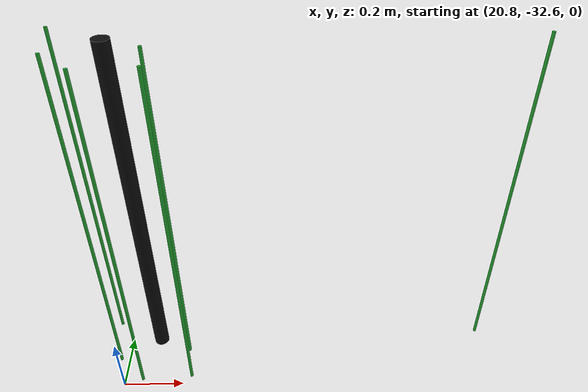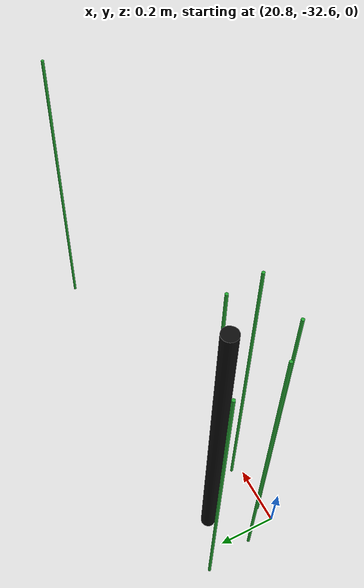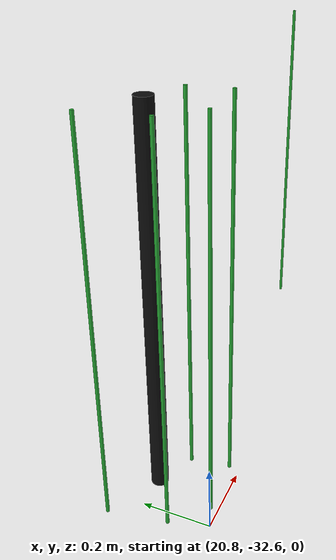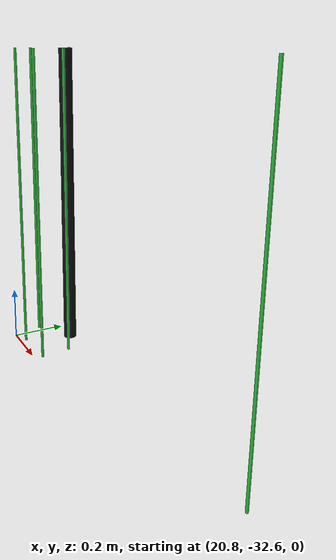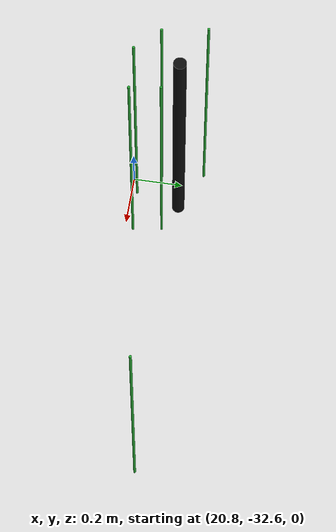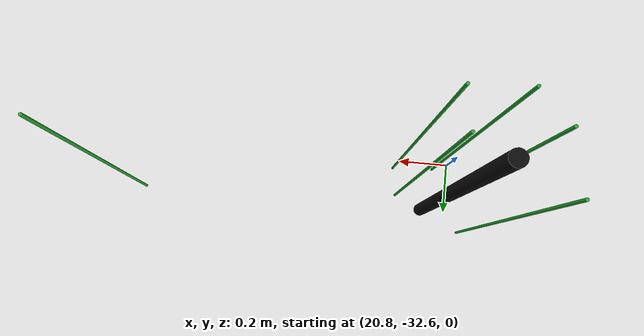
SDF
<sdf version="1.6">
 <world name="default">
  <model name="pole_25">
   <static>1</static>
   <pose>20.9 -32.4 0.575 0 -0 0</pose>
   <link name="link">
    <collision name="collision">
     <geometry><cylinder><length>1.15</length><radius>0.025</radius></cylinder></geometry>
    </collision>
    <visual name="visual">
     <geometry><cylinder><length>1.15</length><radius>0.025</radius></cylinder></geometry>
     <material>
      <script><uri>file://media/materials/scripts/gazebo.material</uri><name>Gazebo/Chrome</name></script>
      <shader type="vertex"><normal_map>__default__</normal_map></shader>
      <emissive>0.1 0.1 0.1 1</emissive>
      <specular>0.01 0.01 0.01 1</specular>
      <ambient>0.5 0.5 0.5 1</ambient>
      <diffuse>0.05 0.05 0.05 1</diffuse>
     </material>
    </visual>
   </link>
  </model>
  <model name="pole_27_clone_clone_68">
   <link name="link">
    <inertial>
     <mass>1</mass>
     <inertia><ixx>1</ixx><ixy>0</ixy><ixz>0</ixz><iyy>1</iyy><iyz>0</iyz><izz>1</izz></inertia>
    </inertial>
    <visual name="visual">
     <geometry><cylinder><length>1.15</length><radius>0.005</radius></cylinder></geometry>
     <material>
      <script><uri>file://media/materials/scripts/gazebo.material</uri><name>Gazebo/Green</name></script>
      <shader type="vertex"><normal_map>__default__</normal_map></shader>
      <emissive>0 0.1 0 1</emissive>
      <specular>0 0.01 0 1</specular>
      <ambient>0 0.5 0 1</ambient>
      <diffuse>0 0.05 0 1</diffuse>
     </material>
    </visual>
    <collision name="collision">
     <geometry><cylinder><radius>0.005</radius><length>1.15</length></cylinder></geometry>
     <surface>
      <friction>
       <ode><mu>1</mu><mu2>1</mu2><fdir1>0 0 0</fdir1><slip1>0</slip1><slip2>0</slip2></ode>
       <torsional>
        <coefficient>1</coefficient>
        <patch_radius>0</patch_radius>
        <surface_radius>0</surface_radius>
        <use_patch_radius>1</use_patch_radius>
        <ode><slip>0</slip></ode>
       </torsional>
      </friction>
      <bounce><restitution_coefficient>0</restitution_coefficient><threshold>1e+06</threshold></bounce>
      <contact>
       <collide_without_contact>0</collide_without_contact>
       <collide_without_contact_bitmask>1</collide_without_contact_bitmask>
       <collide_bitmask>1</collide_bitmask>
       <ode>
        <soft_cfm>0</soft_cfm>
        <soft_erp>0.2</soft_erp>
        <kp>1e+13</kp>
        <kd>1</kd>
        <max_vel>0.01</max_vel>
        <min_depth>0</min_depth>
       </ode>
       <bullet>
        <split_impulse>1</split_impulse>
        <split_impulse_penetration_threshold>-0.01</split_impulse_penetration_threshold>
        <soft_cfm>0</soft_cfm>
        <soft_erp>0.2</soft_erp>
        <kp>1e+13</kp>
        <kd>1</kd>
       </bullet>
      </contact>
     </surface>
    </collision>
   </link>
   <static>1</static>
   <pose>20.7397 -32.318 0.575 0 -0 0</pose>
  </model>
  <model name="pole_27_clone_clone_69">
   <link name="link">
    <inertial>
     <mass>1</mass>
     <inertia><ixx>1</ixx><ixy>0</ixy><ixz>0</ixz><iyy>1</iyy><iyz>0</iyz><izz>1</izz></inertia>
    </inertial>
    <visual name="visual">
     <geometry><cylinder><length>1.15</length><radius>0.005</radius></cylinder></geometry>
     <material>
      <script><uri>file://media/materials/scripts/gazebo.material</uri><name>Gazebo/Green</name></script>
      <shader type="vertex"><normal_map>__default__</normal_map></shader>
      <emissive>0 0.1 0 1</emissive>
      <specular>0 0.01 0 1</specular>
      <ambient>0 0.5 0 1</ambient>
      <diffuse>0 0.05 0 1</diffuse>
     </material>
    </visual>
    <collision name="collision">
     <geometry><cylinder><radius>0.005</radius><length>1.15</length></cylinder></geometry>
     <surface>
      <friction>
       <ode><mu>1</mu><mu2>1</mu2><fdir1>0 0 0</fdir1><slip1>0</slip1><slip2>0</slip2></ode>
       <torsional>
        <coefficient>1</coefficient>
        <patch_radius>0</patch_radius>
        <surface_radius>0</surface_radius>
        <use_patch_radius>1</use_patch_radius>
        <ode><slip>0</slip></ode>
       </torsional>
      </friction>
      <bounce><restitution_coefficient>0</restitution_coefficient><threshold>1e+06</threshold></bounce>
      <contact>
       <collide_without_contact>0</collide_without_contact>
       <collide_without_contact_bitmask>1</collide_without_contact_bitmask>
       <collide_bitmask>1</collide_bitmask>
       <ode>
        <soft_cfm>0</soft_cfm>
        <soft_erp>0.2</soft_erp>
        <kp>1e+13</kp>
        <kd>1</kd>
        <max_vel>0.01</max_vel>
        <min_depth>0</min_depth>
       </ode>
       <bullet>
        <split_impulse>1</split_impulse>
        <split_impulse_penetration_threshold>-0.01</split_impulse_penetration_threshold>
        <soft_cfm>0</soft_cfm>
        <soft_erp>0.2</soft_erp>
        <kp>1e+13</kp>
        <kd>1</kd>
       </bullet>
      </contact>
     </surface>
    </collision>
   </link>
   <static>1</static>
   <pose>21.0087 -32.4518 0.575 0 -0 0</pose>
  </model>
  <model name="pole_27_clone_clone_70">
   <link name="link">
    <inertial>
     <mass>1</mass>
     <inertia><ixx>1</ixx><ixy>0</ixy><ixz>0</ixz><iyy>1</iyy><iyz>0</iyz><izz>1</izz></inertia>
    </inertial>
    <visual name="visual">
     <geometry><cylinder><length>1.15</length><radius>0.005</radius></cylinder></geometry>
     <material>
      <script><uri>file://media/materials/scripts/gazebo.material</uri><name>Gazebo/Green</name></script>
      <shader type="vertex"><normal_map>__default__</normal_map></shader>
      <emissive>0 0.1 0 1</emissive>
      <specular>0 0.01 0 1</specular>
      <ambient>0 0.5 0 1</ambient>
      <diffuse>0 0.05 0 1</diffuse>
     </material>
    </visual>
    <collision name="collision">
     <geometry><cylinder><radius>0.005</radius><length>1.15</length></cylinder></geometry>
     <surface>
      <friction>
       <ode><mu>1</mu><mu2>1</mu2><fdir1>0 0 0</fdir1><slip1>0</slip1><slip2>0</slip2></ode>
       <torsional>
        <coefficient>1</coefficient>
        <patch_radius>0</patch_radius>
        <surface_radius>0</surface_radius>
        <use_patch_radius>1</use_patch_radius>
        <ode><slip>0</slip></ode>
       </torsional>
      </friction>
      <bounce><restitution_coefficient>0</restitution_coefficient><threshold>1e+06</threshold></bounce>
      <contact>
       <collide_without_contact>0</collide_without_contact>
       <collide_without_contact_bitmask>1</collide_without_contact_bitmask>
       <collide_bitmask>1</collide_bitmask>
       <ode>
        <soft_cfm>0</soft_cfm>
        <soft_erp>0.2</soft_erp>
        <kp>1e+13</kp>
        <kd>1</kd>
        <max_vel>0.01</max_vel>
        <min_depth>0</min_depth>
       </ode>
       <bullet>
        <split_impulse>1</split_impulse>
        <split_impulse_penetration_threshold>-0.01</split_impulse_penetration_threshold>
        <soft_cfm>0</soft_cfm>
        <soft_erp>0.2</soft_erp>
        <kp>1e+13</kp>
        <kd>1</kd>
       </bullet>
      </contact>
     </surface>
    </collision>
   </link>
   <static>1</static>
   <pose>20.7692 -32.4882 0.575 0 -0 0</pose>
  </model>
  <model name="pole_27_clone_clone_71">
   <link name="link">
    <inertial>
     <mass>1</mass>
     <inertia><ixx>1</ixx><ixy>0</ixy><ixz>0</ixz><iyy>1</iyy><iyz>0</iyz><izz>1</izz></inertia>
    </inertial>
    <visual name="visual">
     <geometry><cylinder><length>1.15</length><radius>0.005</radius></cylinder></geometry>
     <material>
      <script><uri>file://media/materials/scripts/gazebo.material</uri><name>Gazebo/Green</name></script>
      <shader type="vertex"><normal_map>__default__</normal_map></shader>
      <emissive>0 0.1 0 1</emissive>
      <specular>0 0.01 0 1</specular>
      <ambient>0 0.5 0 1</ambient>
      <diffuse>0 0.05 0 1</diffuse>
     </material>
    </visual>
    <collision name="collision">
     <geometry><cylinder><radius>0.005</radius><length>1.15</length></cylinder></geometry>
     <surface>
      <friction>
       <ode><mu>1</mu><mu2>1</mu2><fdir1>0 0 0</fdir1><slip1>0</slip1><slip2>0</slip2></ode>
       <torsional>
        <coefficient>1</coefficient>
        <patch_radius>0</patch_radius>
        <surface_radius>0</surface_radius>
        <use_patch_radius>1</use_patch_radius>
        <ode><slip>0</slip></ode>
       </torsional>
      </friction>
      <bounce><restitution_coefficient>0</restitution_coefficient><threshold>1e+06</threshold></bounce>
      <contact>
       <collide_without_contact>0</collide_without_contact>
       <collide_without_contact_bitmask>1</collide_without_contact_bitmask>
       <collide_bitmask>1</collide_bitmask>
       <ode>
        <soft_cfm>0</soft_cfm>
        <soft_erp>0.2</soft_erp>
        <kp>1e+13</kp>
        <kd>1</kd>
        <max_vel>0.01</max_vel>
        <min_depth>0</min_depth>
       </ode>
       <bullet>
        <split_impulse>1</split_impulse>
        <split_impulse_penetration_threshold>-0.01</split_impulse_penetration_threshold>
        <soft_cfm>0</soft_cfm>
        <soft_erp>0.2</soft_erp>
        <kp>1e+13</kp>
        <kd>1</kd>
       </bullet>
      </contact>
     </surface>
    </collision>
   </link>
   <static>1</static>
   <pose>21.0266 -32.5675 0.575 0 -0 0</pose>
  </model>
  <model name="pole_27_clone_clone_72">
   <link name="link">
    <inertial>
     <mass>1</mass>
     <inertia><ixx>1</ixx><ixy>0</ixy><ixz>0</ixz><iyy>1</iyy><iyz>0</iyz><izz>1</izz></inertia>
    </inertial>
    <visual name="visual">
     <geometry><cylinder><length>1.15</length><radius>0.005</radius></cylinder></geometry>
     <material>
      <script><uri>file://media/materials/scripts/gazebo.material</uri><name>Gazebo/Green</name></script>
      <shader type="vertex"><normal_map>__default__</normal_map></shader>
      <emissive>0 0.1 0 1</emissive>
      <specular>0 0.01 0 1</specular>
      <ambient>0 0.5 0 1</ambient>
      <diffuse>0 0.05 0 1</diffuse>
     </material>
    </visual>
    <collision name="collision">
     <geometry><cylinder><radius>0.005</radius><length>1.15</length></cylinder></geometry>
     <surface>
      <friction>
       <ode><mu>1</mu><mu2>1</mu2><fdir1>0 0 0</fdir1><slip1>0</slip1><slip2>0</slip2></ode>
       <torsional>
        <coefficient>1</coefficient>
        <patch_radius>0</patch_radius>
        <surface_radius>0</surface_radius>
        <use_patch_radius>1</use_patch_radius>
        <ode><slip>0</slip></ode>
       </torsional>
      </friction>
      <bounce><restitution_coefficient>0</restitution_coefficient><threshold>1e+06</threshold></bounce>
      <contact>
       <collide_without_contact>0</collide_without_contact>
       <collide_without_contact_bitmask>1</collide_without_contact_bitmask>
       <collide_bitmask>1</collide_bitmask>
       <ode>
        <soft_cfm>0</soft_cfm>
        <soft_erp>0.2</soft_erp>
        <kp>1e+13</kp>
        <kd>1</kd>
        <max_vel>0.01</max_vel>
        <min_depth>0</min_depth>
       </ode>
       <bullet>
        <split_impulse>1</split_impulse>
        <split_impulse_penetration_threshold>-0.01</split_impulse_penetration_threshold>
        <soft_cfm>0</soft_cfm>
        <soft_erp>0.2</soft_erp>
        <kp>1e+13</kp>
        <kd>1</kd>
       </bullet>
      </contact>
     </surface>
    </collision>
   </link>
   <static>1</static>
   <pose>20.8591 -32.5776 0.575 0 -0 0</pose>
  </model>
  <model name="pole_27_clone_clone_157">
   <link name="link">
    <inertial>
     <mass>1</mass>
     <inertia><ixx>1</ixx><ixy>0</ixy><ixz>0</ixz><iyy>1</iyy><iyz>0</iyz><izz>1</izz></inertia>
    </inertial>
    <visual name="visual">
     <geometry><cylinder><length>1.15</length><radius>0.005</radius></cylinder></geometry>
     <material>
      <script><uri>file://media/materials/scripts/gazebo.material</uri><name>Gazebo/Green</name></script>
      <shader type="vertex"><normal_map>__default__</normal_map></shader>
      <emissive>0 0.1 0 1</emissive>
      <specular>0 0.01 0 1</specular>
      <ambient>0 0.5 0 1</ambient>
      <diffuse>0 0.05 0 1</diffuse>
     </material>
    </visual>
    <collision name="collision">
     <geometry><cylinder><radius>0.005</radius><length>1.15</length></cylinder></geometry>
     <surface>
      <friction>
       <ode><mu>1</mu><mu2>1</mu2><fdir1>0 0 0</fdir1><slip1>0</slip1><slip2>0</slip2></ode>
       <torsional>
        <coefficient>1</coefficient>
        <patch_radius>0</patch_radius>
        <surface_radius>0</surface_radius>
        <use_patch_radius>1</use_patch_radius>
        <ode><slip>0</slip></ode>
       </torsional>
      </friction>
      <bounce><restitution_coefficient>0</restitution_coefficient><threshold>1e+06</threshold></bounce>
      <contact>
       <collide_without_contact>0</collide_without_contact>
       <collide_without_contact_bitmask>1</collide_without_contact_bitmask>
       <collide_bitmask>1</collide_bitmask>
       <ode>
        <soft_cfm>0</soft_cfm>
        <soft_erp>0.2</soft_erp>
        <kp>1e+13</kp>
        <kd>1</kd>
        <max_vel>0.01</max_vel>
        <min_depth>0</min_depth>
       </ode>
       <bullet>
        <split_impulse>1</split_impulse>
        <split_impulse_penetration_threshold>-0.01</split_impulse_penetration_threshold>
        <soft_cfm>0</soft_cfm>
        <soft_erp>0.2</soft_erp>
        <kp>1e+13</kp>
        <kd>1</kd>
       </bullet>
      </contact>
     </surface>
    </collision>
   </link>
   <static>1</static>
   <pose>22.0652 -32.3888 0.575 0 -0 0</pose>
  </model>
 </world>
</sdf>
